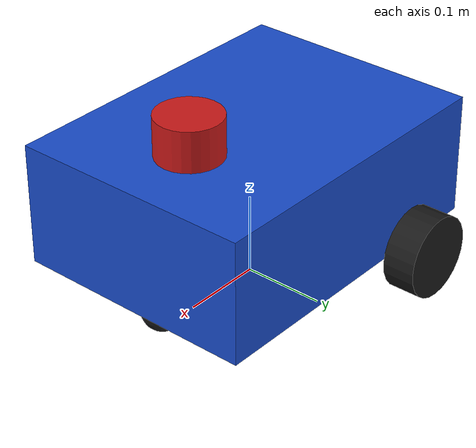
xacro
<?xml version="1.0"?>
<robot name="my_robot" xmlns:xacro="http://www.ros.org/wiki/xacro">

  <xacro:property name="chassis_length" value="0.4"/>
  <xacro:property name="chassis_width" value="0.3"/>
  <xacro:property name="chassis_height" value="0.15"/>
  <xacro:property name="chassis_mass" value="5.0"/>

  <xacro:property name="wheel_radius" value="0.05"/>
  <xacro:property name="wheel_width" value="0.04"/>
  <xacro:property name="wheel_mass" value="0.5"/>
  <xacro:property name="wheel_separation" value="0.35"/>

  <xacro:property name="caster_radius" value="0.025"/>
  <xacro:property name="caster_mass" value="0.1"/>

  <xacro:macro name="box_inertia" params="m l w h">
    <inertia
      ixx="${m*(w*w+h*h)/12}"
      ixy="0"
      ixz="0"
      iyy="${m*(l*l+h*h)/12}"
      iyz="0"
      izz="${m*(l*l+w*w)/12}"/>
  </xacro:macro>

  <xacro:macro name="cylinder_inertia" params="m r h">
    <inertia
      ixx="${m*(3*r*r+h*h)/12}"
      ixy="0"
      ixz="0"
      iyy="${m*(3*r*r+h*h)/12}"
      iyz="0"
      izz="${m*r*r/2}"/>
  </xacro:macro>

  <xacro:macro name="sphere_inertia" params="m r">
    <inertia
      ixx="${2*m*r*r/5}"
      ixy="0"
      ixz="0"
      iyy="${2*m*r*r/5}"
      iyz="0"
      izz="${2*m*r*r/5}"/>
  </xacro:macro>

  <link name="base_footprint"/>

  <joint name="base_footprint_joint" type="fixed">
    <parent link="base_footprint"/>
    <child link="base_link"/>
    <origin xyz="0 0 ${chassis_height/2 + wheel_radius}" rpy="0 0 0"/>
  </joint>

  <link name="base_link">

    <visual>
      <geometry>
        <box size="${chassis_length} ${chassis_width} ${chassis_height}"/>
      </geometry>
      <material name="blue">
        <color rgba="0.1 0.3 0.8 1.0"/>
      </material>
    </visual>

    <collision>
      <geometry>
        <box size="${chassis_length} ${chassis_width} ${chassis_height}"/>
      </geometry>
    </collision>

    <inertial>
      <mass value="${chassis_mass}"/>
      <xacro:box_inertia
        m="${chassis_mass}"
        l="${chassis_length}"
        w="${chassis_width}"
        h="${chassis_height}"/>
    </inertial>

  </link>

  <xacro:macro name="wheel" params="prefix reflect">

    <link name="${prefix}_wheel_link">

      <visual>
        <origin xyz="0 0 0" rpy="1.5708 0 0"/>
        <geometry>
          <cylinder
            radius="${wheel_radius}"
            length="${wheel_width}"/>
        </geometry>
        <material name="black">
          <color rgba="0.1 0.1 0.1 1.0"/>
        </material>
      </visual>

      <collision>
        <origin xyz="0 0 0" rpy="1.5708 0 0"/>
        <geometry>
          <cylinder
            radius="${wheel_radius}"
            length="${wheel_width}"/>
        </geometry>
      </collision>

      <inertial>
        <mass value="${wheel_mass}"/>
        <xacro:cylinder_inertia
          m="${wheel_mass}"
          r="${wheel_radius}"
          h="${wheel_width}"/>
      </inertial>

    </link>

    <joint name="${prefix}_wheel_joint" type="continuous">
      <parent link="base_link"/>
      <child link="${prefix}_wheel_link"/>
      <origin
        xyz="-0.10 ${reflect * wheel_separation/2} ${-chassis_height/2}"
        rpy="0 0 0"/>
      <axis xyz="0 1 0"/>
    </joint>

  </xacro:macro>

  <xacro:wheel prefix="left" reflect="1"/>
  <xacro:wheel prefix="right" reflect="-1"/>

  <link name="caster_link">

    <visual>
      <geometry>
        <sphere radius="${caster_radius}"/>
      </geometry>
      <material name="black"/>
    </visual>

    <collision>
      <geometry>
        <sphere radius="${caster_radius}"/>
      </geometry>
    </collision>

    <inertial>
      <mass value="${caster_mass}"/>
      <xacro:sphere_inertia
        m="${caster_mass}"
        r="${caster_radius}"/>
    </inertial>

  </link>

  <joint name="caster_joint" type="fixed">
    <parent link="base_link"/>
    <child link="caster_link"/>
    <origin
      xyz="${chassis_length/2 - 0.05} 0 ${-chassis_height/2 - wheel_radius + caster_radius}"
      rpy="0 0 0"/>
  </joint>

  <gazebo reference="caster_link">
    <mu1>0.0</mu1>
    <mu2>0.0</mu2>
  </gazebo>

  <xacro:property name="lidar_radius" value="0.04"/>
  <xacro:property name="lidar_height" value="0.05"/>
  <xacro:property name="lidar_mass" value="0.15"/>

  <link name="lidar_link">

    <visual>
      <geometry>
        <cylinder
          radius="${lidar_radius}"
          length="${lidar_height}"/>
      </geometry>
      <material name="red">
        <color rgba="0.8 0.1 0.1 1.0"/>
      </material>
    </visual>

    <collision>
      <geometry>
        <cylinder
          radius="${lidar_radius}"
          length="${lidar_height}"/>
      </geometry>
    </collision>

    <inertial>
      <mass value="${lidar_mass}"/>
      <xacro:cylinder_inertia
        m="${lidar_mass}"
        r="${lidar_radius}"
        h="${lidar_height}"/>
    </inertial>

  </link>

  <joint name="lidar_joint" type="fixed">
    <parent link="base_link"/>
    <child link="lidar_link"/>
    <origin
      xyz="0.1 0 ${chassis_height/2 + lidar_height/2}"
      rpy="0 0 0"/>
  </joint>

  <gazebo reference="lidar_link">

    <sensor name="lidar" type="gpu_lidar">

      <pose>0 0 0 0 0 0</pose>

      <topic>scan</topic>

      <ignition_frame_id>lidar_link</ignition_frame_id>

      <update_rate>10</update_rate>

      <lidar>

        <scan>
          <horizontal>
            <samples>360</samples>
            <resolution>1</resolution>
            <min_angle>-3.14159</min_angle>
            <max_angle>3.14159</max_angle>
          </horizontal>
        </scan>

        <range>
          <min>0.12</min>
          <max>10.0</max>
          <resolution>0.015</resolution>
        </range>

      </lidar>

      <always_on>1</always_on>
      <visualize>true</visualize>

    </sensor>

  </gazebo>

  <gazebo>

    <plugin
      filename="libignition-gazebo-diff-drive-system.so"
      name="ignition::gazebo::systems::DiffDrive">

      <left_joint>left_wheel_joint</left_joint>
      <right_joint>right_wheel_joint</right_joint>

      <wheel_separation>${wheel_separation}</wheel_separation>
      <wheel_radius>${wheel_radius}</wheel_radius>

      <odom_publish_frequency>30</odom_publish_frequency>

      <topic>cmd_vel</topic>
      <odom_topic>odom</odom_topic>

      <frame_id>odom</frame_id>
      <child_frame_id>base_footprint</child_frame_id>

    </plugin>

  </gazebo>

  <gazebo>

    <plugin
      filename="libignition-gazebo-joint-state-publisher-system.so"
      name="ignition::gazebo::systems::JointStatePublisher">

      <topic>joint_states</topic>

    </plugin>

  </gazebo>

</robot>
